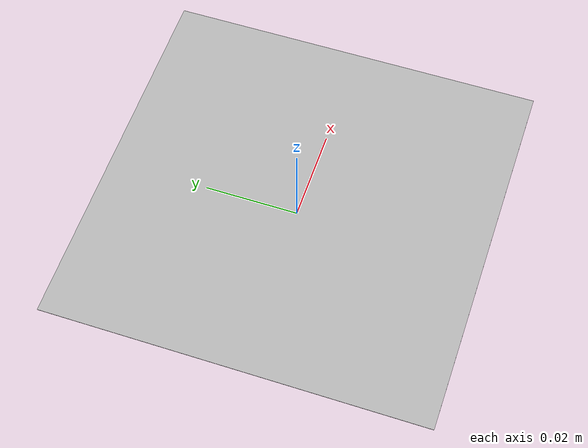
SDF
<?xml version="1.0" ?>
<sdf version="1.4">
  <model name="robot_label3">
    <static>true</static>
    <link name="link">
      <pose>0 0  0.005 0 0 0 </pose>
      <gravity>false</gravity>
      <visual name="panel">
        <cast_shadows>false</cast_shadows>
        <geometry>
          <plane>
            <normal>0 0 1</normal>
            <size>0.08 0.08</size>
          </plane>
        </geometry>
	<material>
          <script>
            <uri>model://robot_label1/materials/scripts</uri>
            <uri>model://robot_label1/materials/textures</uri>
            <name>robot_label/robotino3</name>
          </script>
	</material>
      </visual>
    </link>
  </model>
</sdf>
